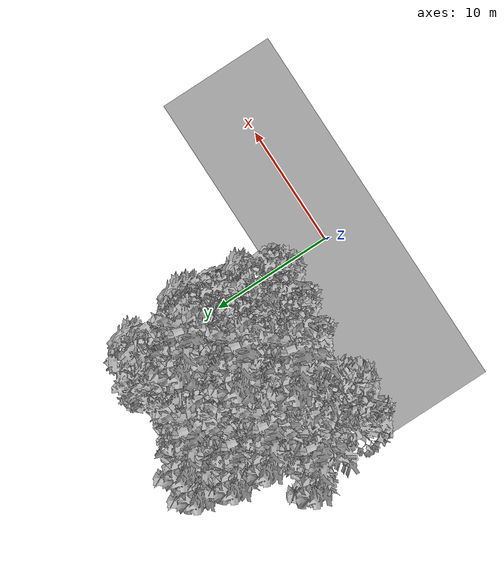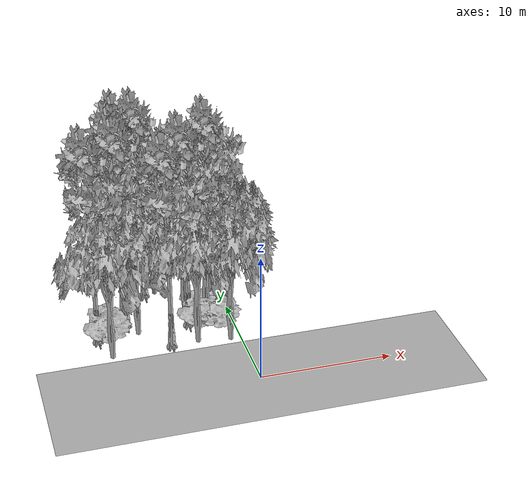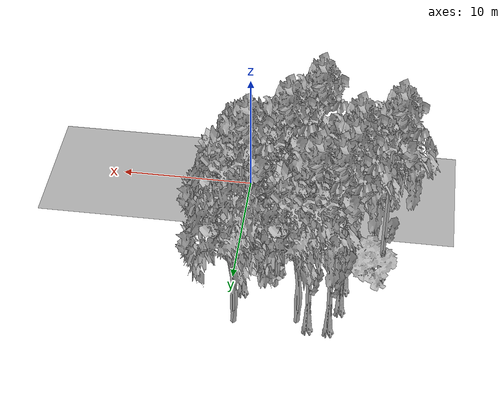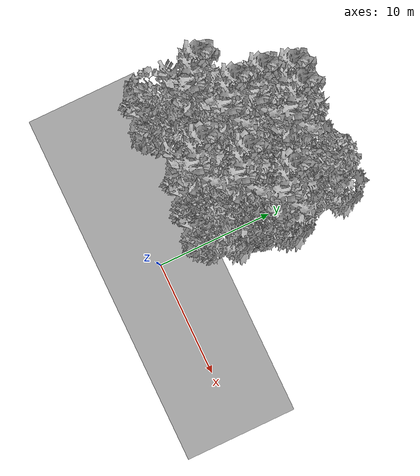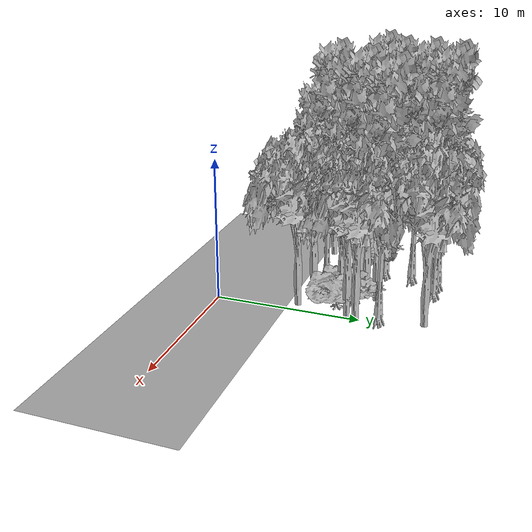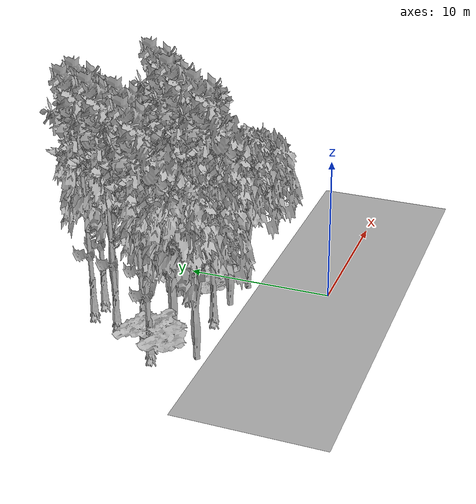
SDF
<sdf version="1.7">
 <world name="default">
  <model name="ground_plane">
   <static>1</static>
   <link name="link">
    <collision name="collision">
     <pose>-50 0 0 0 -0 0</pose>
     <geometry><plane><normal>0 0 1</normal><size>100 100</size></plane></geometry>
     <surface><contact><ode><min_depth>0.01</min_depth><max_vel>0</max_vel></ode></contact></surface>
    </collision>
    <visual name="grass">
     <cast_shadows>0</cast_shadows>
     <geometry>
      <mesh>
       <scale>0.5814285714285714 0.18142857142857144 0.1</scale>
       <uri>file://grass_plane/meshes/grass_plane.dae</uri>
      </mesh>
     </geometry>
    </visual>
   </link>
  </model>
  <model name="Tree 14">
   <static>1</static>
   <pose>-0.8850164242984562 11.105231925319103 0 1.57079 -0 0</pose>
   <link name="link">
    <collision name="collision">
     <geometry><mesh><scale>3.5 5 3.5</scale><uri>model://tree_9/meshes/tree_9.obj</uri></mesh></geometry>
    </collision>
    <visual name="visual">
     <geometry><mesh><scale>3.5 5 3.5</scale><uri>model://tree_9/meshes/tree_9.obj</uri></mesh></geometry>
    </visual>
   </link>
  </model>
  <model name="Tree 82">
   <static>1</static>
   <pose>-9.961221522252913 8.434075677688163 0 1.57079 -0 0</pose>
   <link name="link">
    <collision name="collision">
     <geometry><mesh><scale>4 2.5 4</scale><uri>model://tree_1/meshes/tree_1.obj</uri></mesh></geometry>
    </collision>
    <visual name="visual">
     <geometry><mesh><scale>4 2.5 4</scale><uri>model://tree_1/meshes/tree_1.obj</uri></mesh></geometry>
    </visual>
   </link>
  </model>
  <model name="Tree 109">
   <static>1</static>
   <pose>-3.4865002280883246 9.622576795925497 0 1.57079 -0 0</pose>
   <link name="link">
    <collision name="collision">
     <geometry><mesh><scale>3.5 5 3.5</scale><uri>model://tree_2/meshes/tree_2.obj</uri></mesh></geometry>
    </collision>
    <visual name="visual">
     <geometry><mesh><scale>3.5 5 3.5</scale><uri>model://tree_2/meshes/tree_2.obj</uri></mesh></geometry>
    </visual>
   </link>
  </model>
  <model name="Tree 155">
   <static>1</static>
   <pose>-1.4371220339586372 8.121024783885453 0 1.57079 -0 0</pose>
   <link name="link">
    <collision name="collision">
     <geometry><mesh><scale>4 2.5 4</scale><uri>model://tree_1/meshes/tree_1.obj</uri></mesh></geometry>
    </collision>
    <visual name="visual">
     <geometry><mesh><scale>4 2.5 4</scale><uri>model://tree_1/meshes/tree_1.obj</uri></mesh></geometry>
    </visual>
   </link>
  </model>
  <model name="Tree 164">
   <static>1</static>
   <pose>-9.96955953303295 5.511904416958178 0 1.57079 -0 0</pose>
   <link name="link">
    <collision name="collision">
     <geometry><mesh><scale>3.5 5 3.5</scale><uri>model://tree_2/meshes/tree_2.obj</uri></mesh></geometry>
    </collision>
    <visual name="visual">
     <geometry><mesh><scale>3.5 5 3.5</scale><uri>model://tree_2/meshes/tree_2.obj</uri></mesh></geometry>
    </visual>
   </link>
  </model>
  <model name="Tree 260">
   <static>1</static>
   <pose>-2.1072121110382014 8.22214143821218 0 1.57079 -0 0</pose>
   <link name="link">
    <collision name="collision">
     <geometry><mesh><scale>3.5 5 3.5</scale><uri>model://tree_2/meshes/tree_2.obj</uri></mesh></geometry>
    </collision>
    <visual name="visual">
     <geometry><mesh><scale>3.5 5 3.5</scale><uri>model://tree_2/meshes/tree_2.obj</uri></mesh></geometry>
    </visual>
   </link>
  </model>
  <model name="Tree 271">
   <static>1</static>
   <pose>-5.226983911792281 6.26930727088326 0 1.57079 -0 0</pose>
   <link name="link">
    <collision name="collision">
     <geometry><mesh><scale>3.5 5 3.5</scale><uri>model://tree_9/meshes/tree_9.obj</uri></mesh></geometry>
    </collision>
    <visual name="visual">
     <geometry><mesh><scale>3.5 5 3.5</scale><uri>model://tree_9/meshes/tree_9.obj</uri></mesh></geometry>
    </visual>
   </link>
  </model>
  <model name="Tree 278">
   <static>1</static>
   <pose>-3.3256727224331684 9.234220463113523 0 1.57079 -0 0</pose>
   <link name="link">
    <collision name="collision">
     <geometry><mesh><scale>3.5 5 3.5</scale><uri>model://tree_2/meshes/tree_2.obj</uri></mesh></geometry>
    </collision>
    <visual name="visual">
     <geometry><mesh><scale>3.5 5 3.5</scale><uri>model://tree_2/meshes/tree_2.obj</uri></mesh></geometry>
    </visual>
   </link>
  </model>
  <model name="Tree 281">
   <static>1</static>
   <pose>-10.517912294230037 8.395363822776734 0 1.57079 -0 0</pose>
   <link name="link">
    <collision name="collision">
     <geometry><mesh><scale>3.5 5 3.5</scale><uri>model://tree_9/meshes/tree_9.obj</uri></mesh></geometry>
    </collision>
    <visual name="visual">
     <geometry><mesh><scale>3.5 5 3.5</scale><uri>model://tree_9/meshes/tree_9.obj</uri></mesh></geometry>
    </visual>
   </link>
  </model>
  <model name="Tree 299">
   <static>1</static>
   <pose>-0.8842206553492389 5.517534732241582 0 1.57079 -0 0</pose>
   <link name="link">
    <collision name="collision">
     <geometry><mesh><scale>3.5 5 3.5</scale><uri>model://tree_2/meshes/tree_2.obj</uri></mesh></geometry>
    </collision>
    <visual name="visual">
     <geometry><mesh><scale>3.5 5 3.5</scale><uri>model://tree_2/meshes/tree_2.obj</uri></mesh></geometry>
    </visual>
   </link>
  </model>
  <model name="Tree 310">
   <static>1</static>
   <pose>-5.09881167224772 13.572323962432826 0 1.57079 -0 0</pose>
   <link name="link">
    <collision name="collision">
     <geometry><mesh><scale>3.5 5 3.5</scale><uri>model://tree_2/meshes/tree_2.obj</uri></mesh></geometry>
    </collision>
    <visual name="visual">
     <geometry><mesh><scale>3.5 5 3.5</scale><uri>model://tree_2/meshes/tree_2.obj</uri></mesh></geometry>
    </visual>
   </link>
  </model>
  <model name="Tree 332">
   <static>1</static>
   <pose>-3.3286520288690156 8.846591825886264 0 1.57079 -0 0</pose>
   <link name="link">
    <collision name="collision">
     <geometry><mesh><scale>3.5 5 3.5</scale><uri>model://tree_9/meshes/tree_9.obj</uri></mesh></geometry>
    </collision>
    <visual name="visual">
     <geometry><mesh><scale>3.5 5 3.5</scale><uri>model://tree_9/meshes/tree_9.obj</uri></mesh></geometry>
    </visual>
   </link>
  </model>
  <model name="Tree 336">
   <static>1</static>
   <pose>-7.50434736349176 8.150194125051392 0 1.57079 -0 0</pose>
   <link name="link">
    <collision name="collision">
     <geometry><mesh><scale>3.5 5 3.5</scale><uri>model://tree_2/meshes/tree_2.obj</uri></mesh></geometry>
    </collision>
    <visual name="visual">
     <geometry><mesh><scale>3.5 5 3.5</scale><uri>model://tree_2/meshes/tree_2.obj</uri></mesh></geometry>
    </visual>
   </link>
  </model>
  <model name="Tree 350">
   <static>1</static>
   <pose>-3.2354313740350022 10.411226084685087 0 1.57079 -0 0</pose>
   <link name="link">
    <collision name="collision">
     <geometry><mesh><scale>3.5 5 3.5</scale><uri>model://tree_2/meshes/tree_2.obj</uri></mesh></geometry>
    </collision>
    <visual name="visual">
     <geometry><mesh><scale>3.5 5 3.5</scale><uri>model://tree_2/meshes/tree_2.obj</uri></mesh></geometry>
    </visual>
   </link>
  </model>
  <model name="Tree 405">
   <static>1</static>
   <pose>-5.7719327156408795 13.975698099165054 0 1.57079 -0 0</pose>
   <link name="link">
    <collision name="collision">
     <geometry><mesh><scale>3.5 5 3.5</scale><uri>model://tree_9/meshes/tree_9.obj</uri></mesh></geometry>
    </collision>
    <visual name="visual">
     <geometry><mesh><scale>3.5 5 3.5</scale><uri>model://tree_9/meshes/tree_9.obj</uri></mesh></geometry>
    </visual>
   </link>
  </model>
  <model name="Tree 428">
   <static>1</static>
   <pose>-0.043147907400715724 9.744973121146508 0 1.57079 -0 0</pose>
   <link name="link">
    <collision name="collision">
     <geometry><mesh><scale>3.5 5 3.5</scale><uri>model://tree_2/meshes/tree_2.obj</uri></mesh></geometry>
    </collision>
    <visual name="visual">
     <geometry><mesh><scale>3.5 5 3.5</scale><uri>model://tree_2/meshes/tree_2.obj</uri></mesh></geometry>
    </visual>
   </link>
  </model>
  <model name="Tree 438">
   <static>1</static>
   <pose>-7.852902725330637 12.036391315437662 0 1.57079 -0 0</pose>
   <link name="link">
    <collision name="collision">
     <geometry><mesh><scale>3.5 5 3.5</scale><uri>model://tree_9/meshes/tree_9.obj</uri></mesh></geometry>
    </collision>
    <visual name="visual">
     <geometry><mesh><scale>3.5 5 3.5</scale><uri>model://tree_9/meshes/tree_9.obj</uri></mesh></geometry>
    </visual>
   </link>
  </model>
  <model name="Tree 446">
   <static>1</static>
   <pose>-7.211786484171284 14.015259848906599 0 1.57079 -0 0</pose>
   <link name="link">
    <collision name="collision">
     <geometry><mesh><scale>3.5 5 3.5</scale><uri>model://tree_9/meshes/tree_9.obj</uri></mesh></geometry>
    </collision>
    <visual name="visual">
     <geometry><mesh><scale>3.5 5 3.5</scale><uri>model://tree_9/meshes/tree_9.obj</uri></mesh></geometry>
    </visual>
   </link>
  </model>
  <model name="Tree 468">
   <static>1</static>
   <pose>-0.2671670538158111 9.098221197110576 0 1.57079 -0 0</pose>
   <link name="link">
    <collision name="collision">
     <geometry><mesh><scale>3.5 5 3.5</scale><uri>model://tree_2/meshes/tree_2.obj</uri></mesh></geometry>
    </collision>
    <visual name="visual">
     <geometry><mesh><scale>3.5 5 3.5</scale><uri>model://tree_2/meshes/tree_2.obj</uri></mesh></geometry>
    </visual>
   </link>
  </model>
  <model name="Tree 485">
   <static>1</static>
   <pose>-8.001761063368043 10.022402246366685 0 1.57079 -0 0</pose>
   <link name="link">
    <collision name="collision">
     <geometry><mesh><scale>3.5 5 3.5</scale><uri>model://tree_9/meshes/tree_9.obj</uri></mesh></geometry>
    </collision>
    <visual name="visual">
     <geometry><mesh><scale>3.5 5 3.5</scale><uri>model://tree_9/meshes/tree_9.obj</uri></mesh></geometry>
    </visual>
   </link>
  </model>
  <model name="Tree 501">
   <static>1</static>
   <pose>-0.749533226272618 14.128420125978138 0 1.57079 -0 0</pose>
   <link name="link">
    <collision name="collision">
     <geometry><mesh><scale>3.5 5 3.5</scale><uri>model://tree_2/meshes/tree_2.obj</uri></mesh></geometry>
    </collision>
    <visual name="visual">
     <geometry><mesh><scale>3.5 5 3.5</scale><uri>model://tree_2/meshes/tree_2.obj</uri></mesh></geometry>
    </visual>
   </link>
  </model>
  <model name="Tree 518">
   <static>1</static>
   <pose>-2.664420278466949 8.596089877792878 0 1.57079 -0 0</pose>
   <link name="link">
    <collision name="collision">
     <geometry><mesh><scale>4 2.5 4</scale><uri>model://tree_1/meshes/tree_1.obj</uri></mesh></geometry>
    </collision>
    <visual name="visual">
     <geometry><mesh><scale>4 2.5 4</scale><uri>model://tree_1/meshes/tree_1.obj</uri></mesh></geometry>
    </visual>
   </link>
  </model>
  <model name="Tree 522">
   <static>1</static>
   <pose>-3.3422136883958444 5.870862463799487 0 1.57079 -0 0</pose>
   <link name="link">
    <collision name="collision">
     <geometry><mesh><scale>3.5 5 3.5</scale><uri>model://tree_2/meshes/tree_2.obj</uri></mesh></geometry>
    </collision>
    <visual name="visual">
     <geometry><mesh><scale>3.5 5 3.5</scale><uri>model://tree_2/meshes/tree_2.obj</uri></mesh></geometry>
    </visual>
   </link>
  </model>
 </world>
</sdf>
